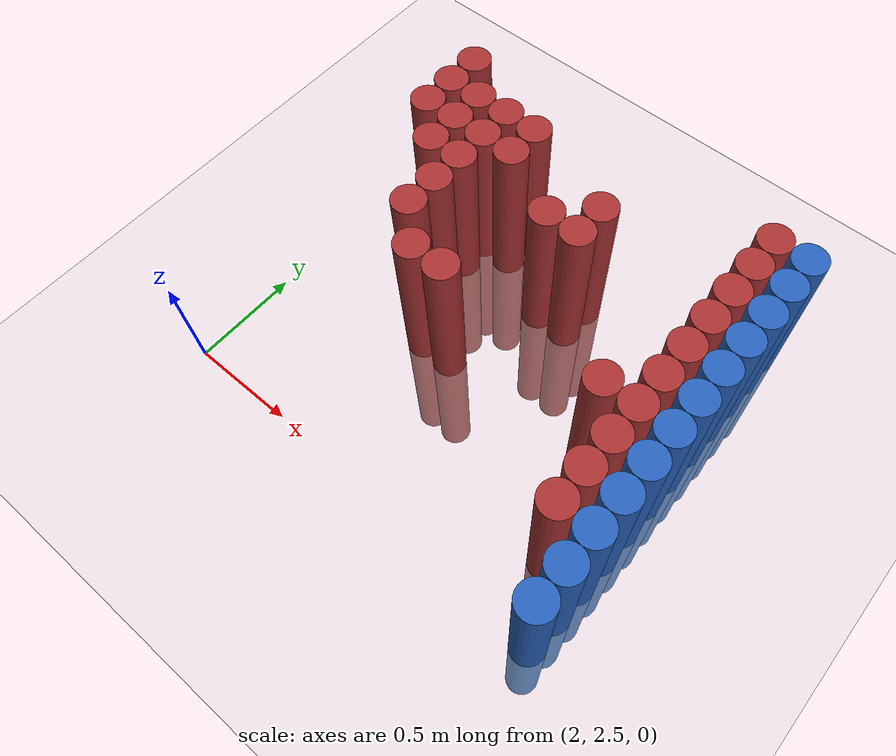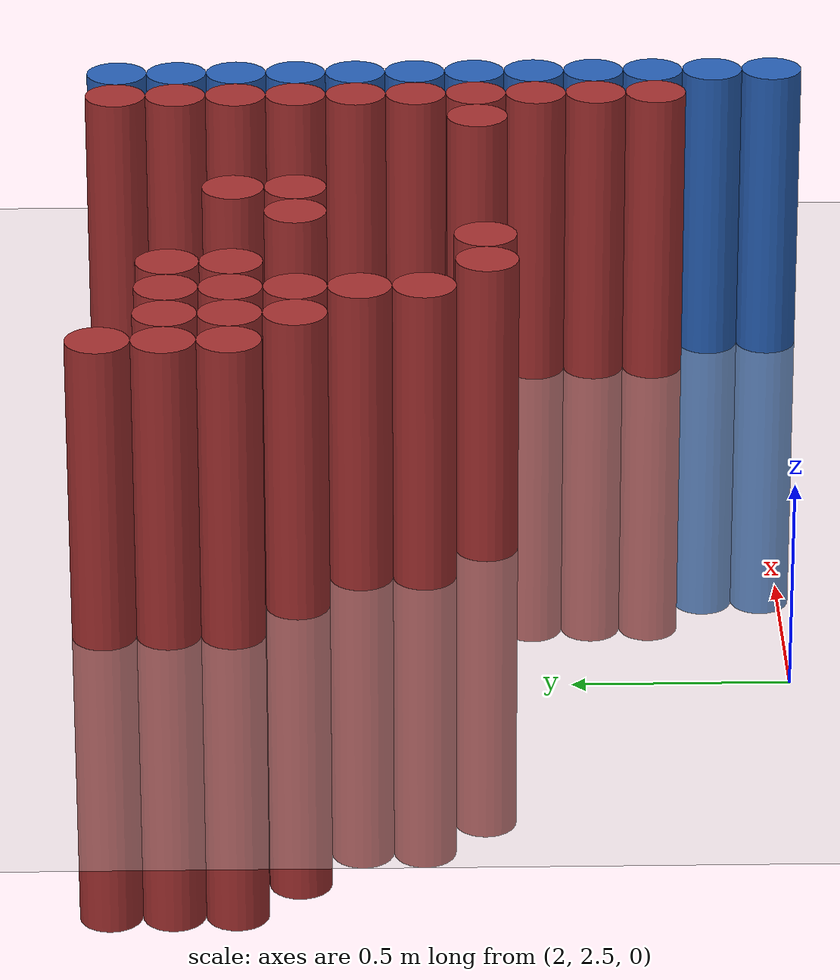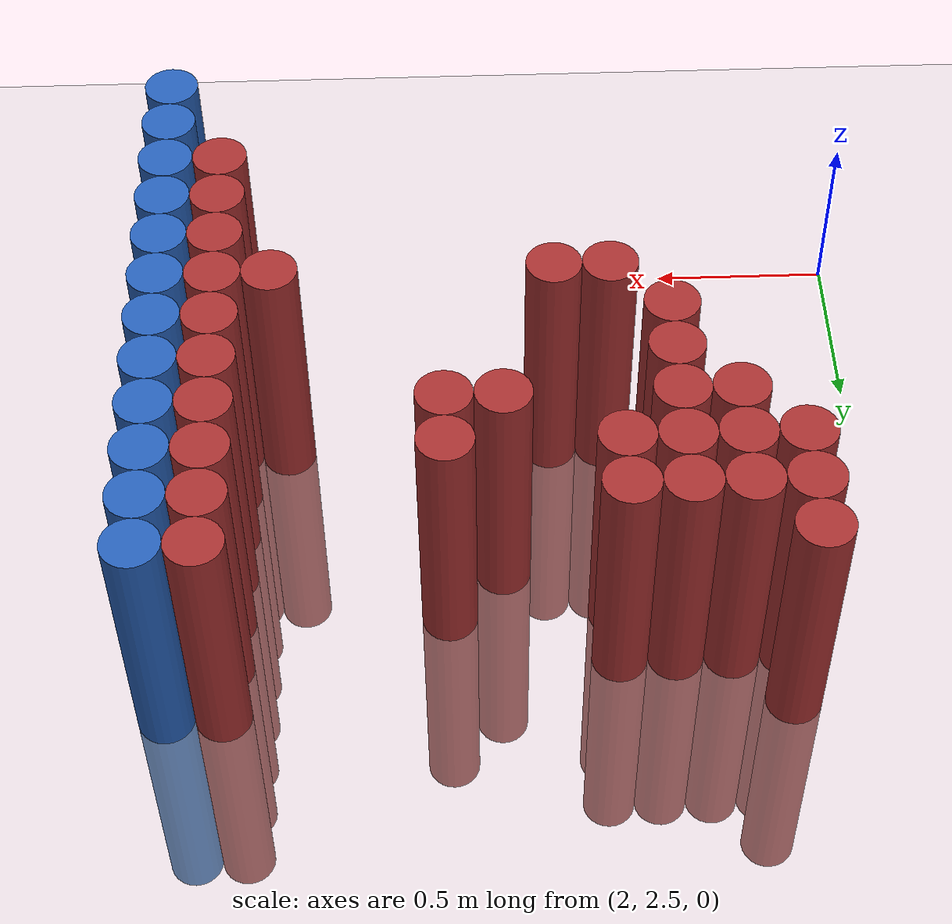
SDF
<sdf version="1.6">
 <world name="default">
  <model name="ground_plane">
   <static>1</static>
   <link name="link">
    <collision name="collision">
     <geometry><plane><normal>0 0 1</normal><size>100 100</size></plane></geometry>
     <surface><friction><ode><mu>100</mu><mu2>50</mu2></ode></friction></surface>
    </collision>
    <visual name="visual">
     <cast_shadows>0</cast_shadows>
     <geometry><plane><normal>0 0 1</normal><size>100 100</size></plane></geometry>
     <material>
      <script><uri>file://media/materials/scripts/gazebo.material</uri><name>Gazebo/Grey</name></script>
     </material>
    </visual>
   </link>
  </model>
  <model name="unit_cylinder_148">
   <static>1</static>
   <pose>3.925000 2.575000 0.000000 0.000000 0.000000 0.000000</pose>
   <link name="link">
    <inertial>
     <mass>1</mass>
     <inertia><ixx>0.145833</ixx><ixy>0</ixy><ixz>0</ixz><iyy>0.145833</iyy><iyz>0</iyz><izz>0.125</izz></inertia>
    </inertial>
    <collision name="collision">
     <geometry><cylinder><radius>0.075000</radius><length>1.5</length></cylinder></geometry>
    </collision>
    <visual name="visual">
     <geometry><cylinder><radius>0.075000</radius><length>1.5</length></cylinder></geometry>
     <material>
      <ambient>0.152000 0.379000 0.720000 1</ambient>
      <diffuse>0.152000 0.379000 0.720000 1</diffuse>
     </material>
     <material>
      <script><name>Gazebo/Grey</name><uri>file://media/materials/scripts/gazebo.material</uri></script>
     </material>
    </visual>
   </link>
  </model>
  <model name="unit_cylinder_150">
   <static>1</static>
   <pose>3.925000 2.725000 0.000000 0.000000 0.000000 0.000000</pose>
   <link name="link">
    <inertial>
     <mass>1</mass>
     <inertia><ixx>0.145833</ixx><ixy>0</ixy><ixz>0</ixz><iyy>0.145833</iyy><iyz>0</iyz><izz>0.125</izz></inertia>
    </inertial>
    <collision name="collision">
     <geometry><cylinder><radius>0.075000</radius><length>1.5</length></cylinder></geometry>
    </collision>
    <visual name="visual">
     <geometry><cylinder><radius>0.075000</radius><length>1.5</length></cylinder></geometry>
     <material>
      <ambient>0.152000 0.379000 0.720000 1</ambient>
      <diffuse>0.152000 0.379000 0.720000 1</diffuse>
     </material>
     <material>
      <script><name>Gazebo/Grey</name><uri>file://media/materials/scripts/gazebo.material</uri></script>
     </material>
    </visual>
   </link>
  </model>
  <model name="unit_cylinder_152">
   <static>1</static>
   <pose>3.925000 2.875000 0.000000 0.000000 0.000000 0.000000</pose>
   <link name="link">
    <inertial>
     <mass>1</mass>
     <inertia><ixx>0.145833</ixx><ixy>0</ixy><ixz>0</ixz><iyy>0.145833</iyy><iyz>0</iyz><izz>0.125</izz></inertia>
    </inertial>
    <collision name="collision">
     <geometry><cylinder><radius>0.075000</radius><length>1.5</length></cylinder></geometry>
    </collision>
    <visual name="visual">
     <geometry><cylinder><radius>0.075000</radius><length>1.5</length></cylinder></geometry>
     <material>
      <ambient>0.152000 0.379000 0.720000 1</ambient>
      <diffuse>0.152000 0.379000 0.720000 1</diffuse>
     </material>
     <material>
      <script><name>Gazebo/Grey</name><uri>file://media/materials/scripts/gazebo.material</uri></script>
     </material>
    </visual>
   </link>
  </model>
  <model name="unit_cylinder_154">
   <static>1</static>
   <pose>3.925000 3.025000 0.000000 0.000000 0.000000 0.000000</pose>
   <link name="link">
    <inertial>
     <mass>1</mass>
     <inertia><ixx>0.145833</ixx><ixy>0</ixy><ixz>0</ixz><iyy>0.145833</iyy><iyz>0</iyz><izz>0.125</izz></inertia>
    </inertial>
    <collision name="collision">
     <geometry><cylinder><radius>0.075000</radius><length>1.5</length></cylinder></geometry>
    </collision>
    <visual name="visual">
     <geometry><cylinder><radius>0.075000</radius><length>1.5</length></cylinder></geometry>
     <material>
      <ambient>0.152000 0.379000 0.720000 1</ambient>
      <diffuse>0.152000 0.379000 0.720000 1</diffuse>
     </material>
     <material>
      <script><name>Gazebo/Grey</name><uri>file://media/materials/scripts/gazebo.material</uri></script>
     </material>
    </visual>
   </link>
  </model>
  <model name="unit_cylinder_156">
   <static>1</static>
   <pose>3.925000 3.175000 0.000000 0.000000 0.000000 0.000000</pose>
   <link name="link">
    <inertial>
     <mass>1</mass>
     <inertia><ixx>0.145833</ixx><ixy>0</ixy><ixz>0</ixz><iyy>0.145833</iyy><iyz>0</iyz><izz>0.125</izz></inertia>
    </inertial>
    <collision name="collision">
     <geometry><cylinder><radius>0.075000</radius><length>1.5</length></cylinder></geometry>
    </collision>
    <visual name="visual">
     <geometry><cylinder><radius>0.075000</radius><length>1.5</length></cylinder></geometry>
     <material>
      <ambient>0.152000 0.379000 0.720000 1</ambient>
      <diffuse>0.152000 0.379000 0.720000 1</diffuse>
     </material>
     <material>
      <script><name>Gazebo/Grey</name><uri>file://media/materials/scripts/gazebo.material</uri></script>
     </material>
    </visual>
   </link>
  </model>
  <model name="unit_cylinder_158">
   <static>1</static>
   <pose>3.925000 3.325000 0.000000 0.000000 0.000000 0.000000</pose>
   <link name="link">
    <inertial>
     <mass>1</mass>
     <inertia><ixx>0.145833</ixx><ixy>0</ixy><ixz>0</ixz><iyy>0.145833</iyy><iyz>0</iyz><izz>0.125</izz></inertia>
    </inertial>
    <collision name="collision">
     <geometry><cylinder><radius>0.075000</radius><length>1.5</length></cylinder></geometry>
    </collision>
    <visual name="visual">
     <geometry><cylinder><radius>0.075000</radius><length>1.5</length></cylinder></geometry>
     <material>
      <ambient>0.152000 0.379000 0.720000 1</ambient>
      <diffuse>0.152000 0.379000 0.720000 1</diffuse>
     </material>
     <material>
      <script><name>Gazebo/Grey</name><uri>file://media/materials/scripts/gazebo.material</uri></script>
     </material>
    </visual>
   </link>
  </model>
  <model name="unit_cylinder_160">
   <static>1</static>
   <pose>3.925000 3.475000 0.000000 0.000000 0.000000 0.000000</pose>
   <link name="link">
    <inertial>
     <mass>1</mass>
     <inertia><ixx>0.145833</ixx><ixy>0</ixy><ixz>0</ixz><iyy>0.145833</iyy><iyz>0</iyz><izz>0.125</izz></inertia>
    </inertial>
    <collision name="collision">
     <geometry><cylinder><radius>0.075000</radius><length>1.5</length></cylinder></geometry>
    </collision>
    <visual name="visual">
     <geometry><cylinder><radius>0.075000</radius><length>1.5</length></cylinder></geometry>
     <material>
      <ambient>0.152000 0.379000 0.720000 1</ambient>
      <diffuse>0.152000 0.379000 0.720000 1</diffuse>
     </material>
     <material>
      <script><name>Gazebo/Grey</name><uri>file://media/materials/scripts/gazebo.material</uri></script>
     </material>
    </visual>
   </link>
  </model>
  <model name="unit_cylinder_162">
   <static>1</static>
   <pose>3.925000 3.625000 0.000000 0.000000 0.000000 0.000000</pose>
   <link name="link">
    <inertial>
     <mass>1</mass>
     <inertia><ixx>0.145833</ixx><ixy>0</ixy><ixz>0</ixz><iyy>0.145833</iyy><iyz>0</iyz><izz>0.125</izz></inertia>
    </inertial>
    <collision name="collision">
     <geometry><cylinder><radius>0.075000</radius><length>1.5</length></cylinder></geometry>
    </collision>
    <visual name="visual">
     <geometry><cylinder><radius>0.075000</radius><length>1.5</length></cylinder></geometry>
     <material>
      <ambient>0.152000 0.379000 0.720000 1</ambient>
      <diffuse>0.152000 0.379000 0.720000 1</diffuse>
     </material>
     <material>
      <script><name>Gazebo/Grey</name><uri>file://media/materials/scripts/gazebo.material</uri></script>
     </material>
    </visual>
   </link>
  </model>
  <model name="unit_cylinder_164">
   <static>1</static>
   <pose>3.925000 3.775000 0.000000 0.000000 0.000000 0.000000</pose>
   <link name="link">
    <inertial>
     <mass>1</mass>
     <inertia><ixx>0.145833</ixx><ixy>0</ixy><ixz>0</ixz><iyy>0.145833</iyy><iyz>0</iyz><izz>0.125</izz></inertia>
    </inertial>
    <collision name="collision">
     <geometry><cylinder><radius>0.075000</radius><length>1.5</length></cylinder></geometry>
    </collision>
    <visual name="visual">
     <geometry><cylinder><radius>0.075000</radius><length>1.5</length></cylinder></geometry>
     <material>
      <ambient>0.152000 0.379000 0.720000 1</ambient>
      <diffuse>0.152000 0.379000 0.720000 1</diffuse>
     </material>
     <material>
      <script><name>Gazebo/Grey</name><uri>file://media/materials/scripts/gazebo.material</uri></script>
     </material>
    </visual>
   </link>
  </model>
  <model name="unit_cylinder_166">
   <static>1</static>
   <pose>3.925000 3.925000 0.000000 0.000000 0.000000 0.000000</pose>
   <link name="link">
    <inertial>
     <mass>1</mass>
     <inertia><ixx>0.145833</ixx><ixy>0</ixy><ixz>0</ixz><iyy>0.145833</iyy><iyz>0</iyz><izz>0.125</izz></inertia>
    </inertial>
    <collision name="collision">
     <geometry><cylinder><radius>0.075000</radius><length>1.5</length></cylinder></geometry>
    </collision>
    <visual name="visual">
     <geometry><cylinder><radius>0.075000</radius><length>1.5</length></cylinder></geometry>
     <material>
      <ambient>0.152000 0.379000 0.720000 1</ambient>
      <diffuse>0.152000 0.379000 0.720000 1</diffuse>
     </material>
     <material>
      <script><name>Gazebo/Grey</name><uri>file://media/materials/scripts/gazebo.material</uri></script>
     </material>
    </visual>
   </link>
  </model>
  <model name="unit_cylinder_168">
   <static>1</static>
   <pose>3.925000 4.075000 0.000000 0.000000 0.000000 0.000000</pose>
   <link name="link">
    <inertial>
     <mass>1</mass>
     <inertia><ixx>0.145833</ixx><ixy>0</ixy><ixz>0</ixz><iyy>0.145833</iyy><iyz>0</iyz><izz>0.125</izz></inertia>
    </inertial>
    <collision name="collision">
     <geometry><cylinder><radius>0.075000</radius><length>1.5</length></cylinder></geometry>
    </collision>
    <visual name="visual">
     <geometry><cylinder><radius>0.075000</radius><length>1.5</length></cylinder></geometry>
     <material>
      <ambient>0.152000 0.379000 0.720000 1</ambient>
      <diffuse>0.152000 0.379000 0.720000 1</diffuse>
     </material>
     <material>
      <script><name>Gazebo/Grey</name><uri>file://media/materials/scripts/gazebo.material</uri></script>
     </material>
    </visual>
   </link>
  </model>
  <model name="unit_cylinder_418">
   <static>1</static>
   <pose>2.275000 3.775000 0.000000 0.000000 0.000000 0.000000</pose>
   <link name="link">
    <inertial>
     <mass>1</mass>
     <inertia><ixx>0.145833</ixx><ixy>0</ixy><ixz>0</ixz><iyy>0.145833</iyy><iyz>0</iyz><izz>0.125</izz></inertia>
    </inertial>
    <collision name="collision">
     <geometry><cylinder><radius>0.075000</radius><length>1.5</length></cylinder></geometry>
    </collision>
    <visual name="visual">
     <geometry><cylinder><radius>0.075000</radius><length>1.5</length></cylinder></geometry>
     <material>
      <ambient>0.648000 0.192000 0.192000 1</ambient>
      <diffuse>0.648000 0.192000 0.192000 1</diffuse>
     </material>
     <material>
      <script><name>Gazebo/Grey</name><uri>file://media/materials/scripts/gazebo.material</uri></script>
     </material>
    </visual>
   </link>
  </model>
  <model name="unit_cylinder_419">
   <static>1</static>
   <pose>2.275000 3.925000 0.000000 0.000000 0.000000 0.000000</pose>
   <link name="link">
    <inertial>
     <mass>1</mass>
     <inertia><ixx>0.145833</ixx><ixy>0</ixy><ixz>0</ixz><iyy>0.145833</iyy><iyz>0</iyz><izz>0.125</izz></inertia>
    </inertial>
    <collision name="collision">
     <geometry><cylinder><radius>0.075000</radius><length>1.5</length></cylinder></geometry>
    </collision>
    <visual name="visual">
     <geometry><cylinder><radius>0.075000</radius><length>1.5</length></cylinder></geometry>
     <material>
      <ambient>0.648000 0.192000 0.192000 1</ambient>
      <diffuse>0.648000 0.192000 0.192000 1</diffuse>
     </material>
     <material>
      <script><name>Gazebo/Grey</name><uri>file://media/materials/scripts/gazebo.material</uri></script>
     </material>
    </visual>
   </link>
  </model>
  <model name="unit_cylinder_420">
   <static>1</static>
   <pose>2.275000 4.075000 0.000000 0.000000 0.000000 0.000000</pose>
   <link name="link">
    <inertial>
     <mass>1</mass>
     <inertia><ixx>0.145833</ixx><ixy>0</ixy><ixz>0</ixz><iyy>0.145833</iyy><iyz>0</iyz><izz>0.125</izz></inertia>
    </inertial>
    <collision name="collision">
     <geometry><cylinder><radius>0.075000</radius><length>1.5</length></cylinder></geometry>
    </collision>
    <visual name="visual">
     <geometry><cylinder><radius>0.075000</radius><length>1.5</length></cylinder></geometry>
     <material>
      <ambient>0.648000 0.192000 0.192000 1</ambient>
      <diffuse>0.648000 0.192000 0.192000 1</diffuse>
     </material>
     <material>
      <script><name>Gazebo/Grey</name><uri>file://media/materials/scripts/gazebo.material</uri></script>
     </material>
    </visual>
   </link>
  </model>
  <model name="unit_cylinder_424">
   <static>1</static>
   <pose>2.425000 3.625000 0.000000 0.000000 0.000000 0.000000</pose>
   <link name="link">
    <inertial>
     <mass>1</mass>
     <inertia><ixx>0.145833</ixx><ixy>0</ixy><ixz>0</ixz><iyy>0.145833</iyy><iyz>0</iyz><izz>0.125</izz></inertia>
    </inertial>
    <collision name="collision">
     <geometry><cylinder><radius>0.075000</radius><length>1.5</length></cylinder></geometry>
    </collision>
    <visual name="visual">
     <geometry><cylinder><radius>0.075000</radius><length>1.5</length></cylinder></geometry>
     <material>
      <ambient>0.648000 0.192000 0.192000 1</ambient>
      <diffuse>0.648000 0.192000 0.192000 1</diffuse>
     </material>
     <material>
      <script><name>Gazebo/Grey</name><uri>file://media/materials/scripts/gazebo.material</uri></script>
     </material>
    </visual>
   </link>
  </model>
  <model name="unit_cylinder_425">
   <static>1</static>
   <pose>2.425000 3.775000 0.000000 0.000000 0.000000 0.000000</pose>
   <link name="link">
    <inertial>
     <mass>1</mass>
     <inertia><ixx>0.145833</ixx><ixy>0</ixy><ixz>0</ixz><iyy>0.145833</iyy><iyz>0</iyz><izz>0.125</izz></inertia>
    </inertial>
    <collision name="collision">
     <geometry><cylinder><radius>0.075000</radius><length>1.5</length></cylinder></geometry>
    </collision>
    <visual name="visual">
     <geometry><cylinder><radius>0.075000</radius><length>1.5</length></cylinder></geometry>
     <material>
      <ambient>0.648000 0.192000 0.192000 1</ambient>
      <diffuse>0.648000 0.192000 0.192000 1</diffuse>
     </material>
     <material>
      <script><name>Gazebo/Grey</name><uri>file://media/materials/scripts/gazebo.material</uri></script>
     </material>
    </visual>
   </link>
  </model>
  <model name="unit_cylinder_426">
   <static>1</static>
   <pose>2.425000 3.925000 0.000000 0.000000 0.000000 0.000000</pose>
   <link name="link">
    <inertial>
     <mass>1</mass>
     <inertia><ixx>0.145833</ixx><ixy>0</ixy><ixz>0</ixz><iyy>0.145833</iyy><iyz>0</iyz><izz>0.125</izz></inertia>
    </inertial>
    <collision name="collision">
     <geometry><cylinder><radius>0.075000</radius><length>1.5</length></cylinder></geometry>
    </collision>
    <visual name="visual">
     <geometry><cylinder><radius>0.075000</radius><length>1.5</length></cylinder></geometry>
     <material>
      <ambient>0.648000 0.192000 0.192000 1</ambient>
      <diffuse>0.648000 0.192000 0.192000 1</diffuse>
     </material>
     <material>
      <script><name>Gazebo/Grey</name><uri>file://media/materials/scripts/gazebo.material</uri></script>
     </material>
    </visual>
   </link>
  </model>
  <model name="unit_cylinder_434">
   <static>1</static>
   <pose>2.575000 3.325000 0.000000 0.000000 0.000000 0.000000</pose>
   <link name="link">
    <inertial>
     <mass>1</mass>
     <inertia><ixx>0.145833</ixx><ixy>0</ixy><ixz>0</ixz><iyy>0.145833</iyy><iyz>0</iyz><izz>0.125</izz></inertia>
    </inertial>
    <collision name="collision">
     <geometry><cylinder><radius>0.075000</radius><length>1.5</length></cylinder></geometry>
    </collision>
    <visual name="visual">
     <geometry><cylinder><radius>0.075000</radius><length>1.5</length></cylinder></geometry>
     <material>
      <ambient>0.648000 0.192000 0.192000 1</ambient>
      <diffuse>0.648000 0.192000 0.192000 1</diffuse>
     </material>
     <material>
      <script><name>Gazebo/Grey</name><uri>file://media/materials/scripts/gazebo.material</uri></script>
     </material>
    </visual>
   </link>
  </model>
  <model name="unit_cylinder_435">
   <static>1</static>
   <pose>2.575000 3.475000 0.000000 0.000000 0.000000 0.000000</pose>
   <link name="link">
    <inertial>
     <mass>1</mass>
     <inertia><ixx>0.145833</ixx><ixy>0</ixy><ixz>0</ixz><iyy>0.145833</iyy><iyz>0</iyz><izz>0.125</izz></inertia>
    </inertial>
    <collision name="collision">
     <geometry><cylinder><radius>0.075000</radius><length>1.5</length></cylinder></geometry>
    </collision>
    <visual name="visual">
     <geometry><cylinder><radius>0.075000</radius><length>1.5</length></cylinder></geometry>
     <material>
      <ambient>0.648000 0.192000 0.192000 1</ambient>
      <diffuse>0.648000 0.192000 0.192000 1</diffuse>
     </material>
     <material>
      <script><name>Gazebo/Grey</name><uri>file://media/materials/scripts/gazebo.material</uri></script>
     </material>
    </visual>
   </link>
  </model>
  <model name="unit_cylinder_436">
   <static>1</static>
   <pose>2.575000 3.625000 0.000000 0.000000 0.000000 0.000000</pose>
   <link name="link">
    <inertial>
     <mass>1</mass>
     <inertia><ixx>0.145833</ixx><ixy>0</ixy><ixz>0</ixz><iyy>0.145833</iyy><iyz>0</iyz><izz>0.125</izz></inertia>
    </inertial>
    <collision name="collision">
     <geometry><cylinder><radius>0.075000</radius><length>1.5</length></cylinder></geometry>
    </collision>
    <visual name="visual">
     <geometry><cylinder><radius>0.075000</radius><length>1.5</length></cylinder></geometry>
     <material>
      <ambient>0.648000 0.192000 0.192000 1</ambient>
      <diffuse>0.648000 0.192000 0.192000 1</diffuse>
     </material>
     <material>
      <script><name>Gazebo/Grey</name><uri>file://media/materials/scripts/gazebo.material</uri></script>
     </material>
    </visual>
   </link>
  </model>
  <model name="unit_cylinder_437">
   <static>1</static>
   <pose>2.575000 3.775000 0.000000 0.000000 0.000000 0.000000</pose>
   <link name="link">
    <inertial>
     <mass>1</mass>
     <inertia><ixx>0.145833</ixx><ixy>0</ixy><ixz>0</ixz><iyy>0.145833</iyy><iyz>0</iyz><izz>0.125</izz></inertia>
    </inertial>
    <collision name="collision">
     <geometry><cylinder><radius>0.075000</radius><length>1.5</length></cylinder></geometry>
    </collision>
    <visual name="visual">
     <geometry><cylinder><radius>0.075000</radius><length>1.5</length></cylinder></geometry>
     <material>
      <ambient>0.648000 0.192000 0.192000 1</ambient>
      <diffuse>0.648000 0.192000 0.192000 1</diffuse>
     </material>
     <material>
      <script><name>Gazebo/Grey</name><uri>file://media/materials/scripts/gazebo.material</uri></script>
     </material>
    </visual>
   </link>
  </model>
  <model name="unit_cylinder_438">
   <static>1</static>
   <pose>2.575000 3.925000 0.000000 0.000000 0.000000 0.000000</pose>
   <link name="link">
    <inertial>
     <mass>1</mass>
     <inertia><ixx>0.145833</ixx><ixy>0</ixy><ixz>0</ixz><iyy>0.145833</iyy><iyz>0</iyz><izz>0.125</izz></inertia>
    </inertial>
    <collision name="collision">
     <geometry><cylinder><radius>0.075000</radius><length>1.5</length></cylinder></geometry>
    </collision>
    <visual name="visual">
     <geometry><cylinder><radius>0.075000</radius><length>1.5</length></cylinder></geometry>
     <material>
      <ambient>0.648000 0.192000 0.192000 1</ambient>
      <diffuse>0.648000 0.192000 0.192000 1</diffuse>
     </material>
     <material>
      <script><name>Gazebo/Grey</name><uri>file://media/materials/scripts/gazebo.material</uri></script>
     </material>
    </visual>
   </link>
  </model>
  <model name="unit_cylinder_446">
   <static>1</static>
   <pose>2.725000 3.175000 0.000000 0.000000 0.000000 0.000000</pose>
   <link name="link">
    <inertial>
     <mass>1</mass>
     <inertia><ixx>0.145833</ixx><ixy>0</ixy><ixz>0</ixz><iyy>0.145833</iyy><iyz>0</iyz><izz>0.125</izz></inertia>
    </inertial>
    <collision name="collision">
     <geometry><cylinder><radius>0.075000</radius><length>1.5</length></cylinder></geometry>
    </collision>
    <visual name="visual">
     <geometry><cylinder><radius>0.075000</radius><length>1.5</length></cylinder></geometry>
     <material>
      <ambient>0.648000 0.192000 0.192000 1</ambient>
      <diffuse>0.648000 0.192000 0.192000 1</diffuse>
     </material>
     <material>
      <script><name>Gazebo/Grey</name><uri>file://media/materials/scripts/gazebo.material</uri></script>
     </material>
    </visual>
   </link>
  </model>
  <model name="unit_cylinder_447">
   <static>1</static>
   <pose>2.725000 3.775000 0.000000 0.000000 0.000000 0.000000</pose>
   <link name="link">
    <inertial>
     <mass>1</mass>
     <inertia><ixx>0.145833</ixx><ixy>0</ixy><ixz>0</ixz><iyy>0.145833</iyy><iyz>0</iyz><izz>0.125</izz></inertia>
    </inertial>
    <collision name="collision">
     <geometry><cylinder><radius>0.075000</radius><length>1.5</length></cylinder></geometry>
    </collision>
    <visual name="visual">
     <geometry><cylinder><radius>0.075000</radius><length>1.5</length></cylinder></geometry>
     <material>
      <ambient>0.648000 0.192000 0.192000 1</ambient>
      <diffuse>0.648000 0.192000 0.192000 1</diffuse>
     </material>
     <material>
      <script><name>Gazebo/Grey</name><uri>file://media/materials/scripts/gazebo.material</uri></script>
     </material>
    </visual>
   </link>
  </model>
  <model name="unit_cylinder_448">
   <static>1</static>
   <pose>2.725000 3.925000 0.000000 0.000000 0.000000 0.000000</pose>
   <link name="link">
    <inertial>
     <mass>1</mass>
     <inertia><ixx>0.145833</ixx><ixy>0</ixy><ixz>0</ixz><iyy>0.145833</iyy><iyz>0</iyz><izz>0.125</izz></inertia>
    </inertial>
    <collision name="collision">
     <geometry><cylinder><radius>0.075000</radius><length>1.5</length></cylinder></geometry>
    </collision>
    <visual name="visual">
     <geometry><cylinder><radius>0.075000</radius><length>1.5</length></cylinder></geometry>
     <material>
      <ambient>0.648000 0.192000 0.192000 1</ambient>
      <diffuse>0.648000 0.192000 0.192000 1</diffuse>
     </material>
     <material>
      <script><name>Gazebo/Grey</name><uri>file://media/materials/scripts/gazebo.material</uri></script>
     </material>
    </visual>
   </link>
  </model>
  <model name="unit_cylinder_455">
   <static>1</static>
   <pose>2.875000 3.175000 0.000000 0.000000 0.000000 0.000000</pose>
   <link name="link">
    <inertial>
     <mass>1</mass>
     <inertia><ixx>0.145833</ixx><ixy>0</ixy><ixz>0</ixz><iyy>0.145833</iyy><iyz>0</iyz><izz>0.125</izz></inertia>
    </inertial>
    <collision name="collision">
     <geometry><cylinder><radius>0.075000</radius><length>1.5</length></cylinder></geometry>
    </collision>
    <visual name="visual">
     <geometry><cylinder><radius>0.075000</radius><length>1.5</length></cylinder></geometry>
     <material>
      <ambient>0.648000 0.192000 0.192000 1</ambient>
      <diffuse>0.648000 0.192000 0.192000 1</diffuse>
     </material>
     <material>
      <script><name>Gazebo/Grey</name><uri>file://media/materials/scripts/gazebo.material</uri></script>
     </material>
    </visual>
   </link>
  </model>
  <model name="unit_cylinder_458">
   <static>1</static>
   <pose>3.025000 3.625000 0.000000 0.000000 0.000000 0.000000</pose>
   <link name="link">
    <inertial>
     <mass>1</mass>
     <inertia><ixx>0.145833</ixx><ixy>0</ixy><ixz>0</ixz><iyy>0.145833</iyy><iyz>0</iyz><izz>0.125</izz></inertia>
    </inertial>
    <collision name="collision">
     <geometry><cylinder><radius>0.075000</radius><length>1.5</length></cylinder></geometry>
    </collision>
    <visual name="visual">
     <geometry><cylinder><radius>0.075000</radius><length>1.5</length></cylinder></geometry>
     <material>
      <ambient>0.648000 0.192000 0.192000 1</ambient>
      <diffuse>0.648000 0.192000 0.192000 1</diffuse>
     </material>
     <material>
      <script><name>Gazebo/Grey</name><uri>file://media/materials/scripts/gazebo.material</uri></script>
     </material>
    </visual>
   </link>
  </model>
  <model name="unit_cylinder_463">
   <static>1</static>
   <pose>3.175000 3.625000 0.000000 0.000000 0.000000 0.000000</pose>
   <link name="link">
    <inertial>
     <mass>1</mass>
     <inertia><ixx>0.145833</ixx><ixy>0</ixy><ixz>0</ixz><iyy>0.145833</iyy><iyz>0</iyz><izz>0.125</izz></inertia>
    </inertial>
    <collision name="collision">
     <geometry><cylinder><radius>0.075000</radius><length>1.5</length></cylinder></geometry>
    </collision>
    <visual name="visual">
     <geometry><cylinder><radius>0.075000</radius><length>1.5</length></cylinder></geometry>
     <material>
      <ambient>0.648000 0.192000 0.192000 1</ambient>
      <diffuse>0.648000 0.192000 0.192000 1</diffuse>
     </material>
     <material>
      <script><name>Gazebo/Grey</name><uri>file://media/materials/scripts/gazebo.material</uri></script>
     </material>
    </visual>
   </link>
  </model>
  <model name="unit_cylinder_464">
   <static>1</static>
   <pose>3.175000 3.775000 0.000000 0.000000 0.000000 0.000000</pose>
   <link name="link">
    <inertial>
     <mass>1</mass>
     <inertia><ixx>0.145833</ixx><ixy>0</ixy><ixz>0</ixz><iyy>0.145833</iyy><iyz>0</iyz><izz>0.125</izz></inertia>
    </inertial>
    <collision name="collision">
     <geometry><cylinder><radius>0.075000</radius><length>1.5</length></cylinder></geometry>
    </collision>
    <visual name="visual">
     <geometry><cylinder><radius>0.075000</radius><length>1.5</length></cylinder></geometry>
     <material>
      <ambient>0.648000 0.192000 0.192000 1</ambient>
      <diffuse>0.648000 0.192000 0.192000 1</diffuse>
     </material>
     <material>
      <script><name>Gazebo/Grey</name><uri>file://media/materials/scripts/gazebo.material</uri></script>
     </material>
    </visual>
   </link>
  </model>
  <model name="unit_cylinder_491">
   <static>1</static>
   <pose>3.625000 3.175000 0.000000 0.000000 0.000000 0.000000</pose>
   <link name="link">
    <inertial>
     <mass>1</mass>
     <inertia><ixx>0.145833</ixx><ixy>0</ixy><ixz>0</ixz><iyy>0.145833</iyy><iyz>0</iyz><izz>0.125</izz></inertia>
    </inertial>
    <collision name="collision">
     <geometry><cylinder><radius>0.075000</radius><length>1.5</length></cylinder></geometry>
    </collision>
    <visual name="visual">
     <geometry><cylinder><radius>0.075000</radius><length>1.5</length></cylinder></geometry>
     <material>
      <ambient>0.648000 0.192000 0.192000 1</ambient>
      <diffuse>0.648000 0.192000 0.192000 1</diffuse>
     </material>
     <material>
      <script><name>Gazebo/Grey</name><uri>file://media/materials/scripts/gazebo.material</uri></script>
     </material>
    </visual>
   </link>
  </model>
  <model name="unit_cylinder_505">
   <static>1</static>
   <pose>3.775000 2.725000 0.000000 0.000000 0.000000 0.000000</pose>
   <link name="link">
    <inertial>
     <mass>1</mass>
     <inertia><ixx>0.145833</ixx><ixy>0</ixy><ixz>0</ixz><iyy>0.145833</iyy><iyz>0</iyz><izz>0.125</izz></inertia>
    </inertial>
    <collision name="collision">
     <geometry><cylinder><radius>0.075000</radius><length>1.5</length></cylinder></geometry>
    </collision>
    <visual name="visual">
     <geometry><cylinder><radius>0.075000</radius><length>1.5</length></cylinder></geometry>
     <material>
      <ambient>0.648000 0.192000 0.192000 1</ambient>
      <diffuse>0.648000 0.192000 0.192000 1</diffuse>
     </material>
     <material>
      <script><name>Gazebo/Grey</name><uri>file://media/materials/scripts/gazebo.material</uri></script>
     </material>
    </visual>
   </link>
  </model>
  <model name="unit_cylinder_506">
   <static>1</static>
   <pose>3.775000 2.875000 0.000000 0.000000 0.000000 0.000000</pose>
   <link name="link">
    <inertial>
     <mass>1</mass>
     <inertia><ixx>0.145833</ixx><ixy>0</ixy><ixz>0</ixz><iyy>0.145833</iyy><iyz>0</iyz><izz>0.125</izz></inertia>
    </inertial>
    <collision name="collision">
     <geometry><cylinder><radius>0.075000</radius><length>1.5</length></cylinder></geometry>
    </collision>
    <visual name="visual">
     <geometry><cylinder><radius>0.075000</radius><length>1.5</length></cylinder></geometry>
     <material>
      <ambient>0.648000 0.192000 0.192000 1</ambient>
      <diffuse>0.648000 0.192000 0.192000 1</diffuse>
     </material>
     <material>
      <script><name>Gazebo/Grey</name><uri>file://media/materials/scripts/gazebo.material</uri></script>
     </material>
    </visual>
   </link>
  </model>
  <model name="unit_cylinder_507">
   <static>1</static>
   <pose>3.775000 3.025000 0.000000 0.000000 0.000000 0.000000</pose>
   <link name="link">
    <inertial>
     <mass>1</mass>
     <inertia><ixx>0.145833</ixx><ixy>0</ixy><ixz>0</ixz><iyy>0.145833</iyy><iyz>0</iyz><izz>0.125</izz></inertia>
    </inertial>
    <collision name="collision">
     <geometry><cylinder><radius>0.075000</radius><length>1.5</length></cylinder></geometry>
    </collision>
    <visual name="visual">
     <geometry><cylinder><radius>0.075000</radius><length>1.5</length></cylinder></geometry>
     <material>
      <ambient>0.648000 0.192000 0.192000 1</ambient>
      <diffuse>0.648000 0.192000 0.192000 1</diffuse>
     </material>
     <material>
      <script><name>Gazebo/Grey</name><uri>file://media/materials/scripts/gazebo.material</uri></script>
     </material>
    </visual>
   </link>
  </model>
  <model name="unit_cylinder_508">
   <static>1</static>
   <pose>3.775000 3.175000 0.000000 0.000000 0.000000 0.000000</pose>
   <link name="link">
    <inertial>
     <mass>1</mass>
     <inertia><ixx>0.145833</ixx><ixy>0</ixy><ixz>0</ixz><iyy>0.145833</iyy><iyz>0</iyz><izz>0.125</izz></inertia>
    </inertial>
    <collision name="collision">
     <geometry><cylinder><radius>0.075000</radius><length>1.5</length></cylinder></geometry>
    </collision>
    <visual name="visual">
     <geometry><cylinder><radius>0.075000</radius><length>1.5</length></cylinder></geometry>
     <material>
      <ambient>0.648000 0.192000 0.192000 1</ambient>
      <diffuse>0.648000 0.192000 0.192000 1</diffuse>
     </material>
     <material>
      <script><name>Gazebo/Grey</name><uri>file://media/materials/scripts/gazebo.material</uri></script>
     </material>
    </visual>
   </link>
  </model>
  <model name="unit_cylinder_509">
   <static>1</static>
   <pose>3.775000 3.325000 0.000000 0.000000 0.000000 0.000000</pose>
   <link name="link">
    <inertial>
     <mass>1</mass>
     <inertia><ixx>0.145833</ixx><ixy>0</ixy><ixz>0</ixz><iyy>0.145833</iyy><iyz>0</iyz><izz>0.125</izz></inertia>
    </inertial>
    <collision name="collision">
     <geometry><cylinder><radius>0.075000</radius><length>1.5</length></cylinder></geometry>
    </collision>
    <visual name="visual">
     <geometry><cylinder><radius>0.075000</radius><length>1.5</length></cylinder></geometry>
     <material>
      <ambient>0.648000 0.192000 0.192000 1</ambient>
      <diffuse>0.648000 0.192000 0.192000 1</diffuse>
     </material>
     <material>
      <script><name>Gazebo/Grey</name><uri>file://media/materials/scripts/gazebo.material</uri></script>
     </material>
    </visual>
   </link>
  </model>
  <model name="unit_cylinder_510">
   <static>1</static>
   <pose>3.775000 3.475000 0.000000 0.000000 0.000000 0.000000</pose>
   <link name="link">
    <inertial>
     <mass>1</mass>
     <inertia><ixx>0.145833</ixx><ixy>0</ixy><ixz>0</ixz><iyy>0.145833</iyy><iyz>0</iyz><izz>0.125</izz></inertia>
    </inertial>
    <collision name="collision">
     <geometry><cylinder><radius>0.075000</radius><length>1.5</length></cylinder></geometry>
    </collision>
    <visual name="visual">
     <geometry><cylinder><radius>0.075000</radius><length>1.5</length></cylinder></geometry>
     <material>
      <ambient>0.648000 0.192000 0.192000 1</ambient>
      <diffuse>0.648000 0.192000 0.192000 1</diffuse>
     </material>
     <material>
      <script><name>Gazebo/Grey</name><uri>file://media/materials/scripts/gazebo.material</uri></script>
     </material>
    </visual>
   </link>
  </model>
  <model name="unit_cylinder_511">
   <static>1</static>
   <pose>3.775000 3.625000 0.000000 0.000000 0.000000 0.000000</pose>
   <link name="link">
    <inertial>
     <mass>1</mass>
     <inertia><ixx>0.145833</ixx><ixy>0</ixy><ixz>0</ixz><iyy>0.145833</iyy><iyz>0</iyz><izz>0.125</izz></inertia>
    </inertial>
    <collision name="collision">
     <geometry><cylinder><radius>0.075000</radius><length>1.5</length></cylinder></geometry>
    </collision>
    <visual name="visual">
     <geometry><cylinder><radius>0.075000</radius><length>1.5</length></cylinder></geometry>
     <material>
      <ambient>0.648000 0.192000 0.192000 1</ambient>
      <diffuse>0.648000 0.192000 0.192000 1</diffuse>
     </material>
     <material>
      <script><name>Gazebo/Grey</name><uri>file://media/materials/scripts/gazebo.material</uri></script>
     </material>
    </visual>
   </link>
  </model>
  <model name="unit_cylinder_512">
   <static>1</static>
   <pose>3.775000 3.775000 0.000000 0.000000 0.000000 0.000000</pose>
   <link name="link">
    <inertial>
     <mass>1</mass>
     <inertia><ixx>0.145833</ixx><ixy>0</ixy><ixz>0</ixz><iyy>0.145833</iyy><iyz>0</iyz><izz>0.125</izz></inertia>
    </inertial>
    <collision name="collision">
     <geometry><cylinder><radius>0.075000</radius><length>1.5</length></cylinder></geometry>
    </collision>
    <visual name="visual">
     <geometry><cylinder><radius>0.075000</radius><length>1.5</length></cylinder></geometry>
     <material>
      <ambient>0.648000 0.192000 0.192000 1</ambient>
      <diffuse>0.648000 0.192000 0.192000 1</diffuse>
     </material>
     <material>
      <script><name>Gazebo/Grey</name><uri>file://media/materials/scripts/gazebo.material</uri></script>
     </material>
    </visual>
   </link>
  </model>
  <model name="unit_cylinder_513">
   <static>1</static>
   <pose>3.775000 3.925000 0.000000 0.000000 0.000000 0.000000</pose>
   <link name="link">
    <inertial>
     <mass>1</mass>
     <inertia><ixx>0.145833</ixx><ixy>0</ixy><ixz>0</ixz><iyy>0.145833</iyy><iyz>0</iyz><izz>0.125</izz></inertia>
    </inertial>
    <collision name="collision">
     <geometry><cylinder><radius>0.075000</radius><length>1.5</length></cylinder></geometry>
    </collision>
    <visual name="visual">
     <geometry><cylinder><radius>0.075000</radius><length>1.5</length></cylinder></geometry>
     <material>
      <ambient>0.648000 0.192000 0.192000 1</ambient>
      <diffuse>0.648000 0.192000 0.192000 1</diffuse>
     </material>
     <material>
      <script><name>Gazebo/Grey</name><uri>file://media/materials/scripts/gazebo.material</uri></script>
     </material>
    </visual>
   </link>
  </model>
  <model name="unit_cylinder_514">
   <static>1</static>
   <pose>3.775000 4.075000 0.000000 0.000000 0.000000 0.000000</pose>
   <link name="link">
    <inertial>
     <mass>1</mass>
     <inertia><ixx>0.145833</ixx><ixy>0</ixy><ixz>0</ixz><iyy>0.145833</iyy><iyz>0</iyz><izz>0.125</izz></inertia>
    </inertial>
    <collision name="collision">
     <geometry><cylinder><radius>0.075000</radius><length>1.5</length></cylinder></geometry>
    </collision>
    <visual name="visual">
     <geometry><cylinder><radius>0.075000</radius><length>1.5</length></cylinder></geometry>
     <material>
      <ambient>0.648000 0.192000 0.192000 1</ambient>
      <diffuse>0.648000 0.192000 0.192000 1</diffuse>
     </material>
     <material>
      <script><name>Gazebo/Grey</name><uri>file://media/materials/scripts/gazebo.material</uri></script>
     </material>
    </visual>
   </link>
  </model>
  <model name="unit_cylinder_546">
   <static>1</static>
   <pose>3.925000 2.425000 0.000000 0.000000 0.000000 0.000000</pose>
   <link name="link">
    <inertial>
     <mass>1</mass>
     <inertia><ixx>0.145833</ixx><ixy>0</ixy><ixz>0</ixz><iyy>0.145833</iyy><iyz>0</iyz><izz>0.125</izz></inertia>
    </inertial>
    <collision name="collision">
     <geometry><cylinder><radius>0.075000</radius><length>1.5</length></cylinder></geometry>
    </collision>
    <visual name="visual">
     <geometry><cylinder><radius>0.075000</radius><length>1.5</length></cylinder></geometry>
     <material>
      <ambient>0.152000 0.379000 0.720000 1</ambient>
      <diffuse>0.152000 0.379000 0.720000 1</diffuse>
     </material>
     <material>
      <script><name>Gazebo/Grey</name><uri>file://media/materials/scripts/gazebo.material</uri></script>
     </material>
    </visual>
   </link>
  </model>
  <model name="unit_cylinder_547">
   <static>1</static>
   <pose>3.925000 2.575000 0.000000 0.000000 0.000000 0.000000</pose>
   <link name="link">
    <inertial>
     <mass>1</mass>
     <inertia><ixx>0.145833</ixx><ixy>0</ixy><ixz>0</ixz><iyy>0.145833</iyy><iyz>0</iyz><izz>0.125</izz></inertia>
    </inertial>
    <collision name="collision">
     <geometry><cylinder><radius>0.075000</radius><length>1.5</length></cylinder></geometry>
    </collision>
    <visual name="visual">
     <geometry><cylinder><radius>0.075000</radius><length>1.5</length></cylinder></geometry>
     <material>
      <ambient>0.152000 0.379000 0.720000 1</ambient>
      <diffuse>0.152000 0.379000 0.720000 1</diffuse>
     </material>
     <material>
      <script><name>Gazebo/Grey</name><uri>file://media/materials/scripts/gazebo.material</uri></script>
     </material>
    </visual>
   </link>
  </model>
  <model name="unit_cylinder_548">
   <static>1</static>
   <pose>3.925000 2.725000 0.000000 0.000000 0.000000 0.000000</pose>
   <link name="link">
    <inertial>
     <mass>1</mass>
     <inertia><ixx>0.145833</ixx><ixy>0</ixy><ixz>0</ixz><iyy>0.145833</iyy><iyz>0</iyz><izz>0.125</izz></inertia>
    </inertial>
    <collision name="collision">
     <geometry><cylinder><radius>0.075000</radius><length>1.5</length></cylinder></geometry>
    </collision>
    <visual name="visual">
     <geometry><cylinder><radius>0.075000</radius><length>1.5</length></cylinder></geometry>
     <material>
      <ambient>0.152000 0.379000 0.720000 1</ambient>
      <diffuse>0.152000 0.379000 0.720000 1</diffuse>
     </material>
     <material>
      <script><name>Gazebo/Grey</name><uri>file://media/materials/scripts/gazebo.material</uri></script>
     </material>
    </visual>
   </link>
  </model>
  <model name="unit_cylinder_549">
   <static>1</static>
   <pose>3.925000 2.875000 0.000000 0.000000 0.000000 0.000000</pose>
   <link name="link">
    <inertial>
     <mass>1</mass>
     <inertia><ixx>0.145833</ixx><ixy>0</ixy><ixz>0</ixz><iyy>0.145833</iyy><iyz>0</iyz><izz>0.125</izz></inertia>
    </inertial>
    <collision name="collision">
     <geometry><cylinder><radius>0.075000</radius><length>1.5</length></cylinder></geometry>
    </collision>
    <visual name="visual">
     <geometry><cylinder><radius>0.075000</radius><length>1.5</length></cylinder></geometry>
     <material>
      <ambient>0.152000 0.379000 0.720000 1</ambient>
      <diffuse>0.152000 0.379000 0.720000 1</diffuse>
     </material>
     <material>
      <script><name>Gazebo/Grey</name><uri>file://media/materials/scripts/gazebo.material</uri></script>
     </material>
    </visual>
   </link>
  </model>
  <model name="unit_cylinder_550">
   <static>1</static>
   <pose>3.925000 3.025000 0.000000 0.000000 0.000000 0.000000</pose>
   <link name="link">
    <inertial>
     <mass>1</mass>
     <inertia><ixx>0.145833</ixx><ixy>0</ixy><ixz>0</ixz><iyy>0.145833</iyy><iyz>0</iyz><izz>0.125</izz></inertia>
    </inertial>
    <collision name="collision">
     <geometry><cylinder><radius>0.075000</radius><length>1.5</length></cylinder></geometry>
    </collision>
    <visual name="visual">
     <geometry><cylinder><radius>0.075000</radius><length>1.5</length></cylinder></geometry>
     <material>
      <ambient>0.152000 0.379000 0.720000 1</ambient>
      <diffuse>0.152000 0.379000 0.720000 1</diffuse>
     </material>
     <material>
      <script><name>Gazebo/Grey</name><uri>file://media/materials/scripts/gazebo.material</uri></script>
     </material>
    </visual>
   </link>
  </model>
  <model name="unit_cylinder_551">
   <static>1</static>
   <pose>3.925000 3.175000 0.000000 0.000000 0.000000 0.000000</pose>
   <link name="link">
    <inertial>
     <mass>1</mass>
     <inertia><ixx>0.145833</ixx><ixy>0</ixy><ixz>0</ixz><iyy>0.145833</iyy><iyz>0</iyz><izz>0.125</izz></inertia>
    </inertial>
    <collision name="collision">
     <geometry><cylinder><radius>0.075000</radius><length>1.5</length></cylinder></geometry>
    </collision>
    <visual name="visual">
     <geometry><cylinder><radius>0.075000</radius><length>1.5</length></cylinder></geometry>
     <material>
      <ambient>0.152000 0.379000 0.720000 1</ambient>
      <diffuse>0.152000 0.379000 0.720000 1</diffuse>
     </material>
     <material>
      <script><name>Gazebo/Grey</name><uri>file://media/materials/scripts/gazebo.material</uri></script>
     </material>
    </visual>
   </link>
  </model>
  <model name="unit_cylinder_552">
   <static>1</static>
   <pose>3.925000 3.325000 0.000000 0.000000 0.000000 0.000000</pose>
   <link name="link">
    <inertial>
     <mass>1</mass>
     <inertia><ixx>0.145833</ixx><ixy>0</ixy><ixz>0</ixz><iyy>0.145833</iyy><iyz>0</iyz><izz>0.125</izz></inertia>
    </inertial>
    <collision name="collision">
     <geometry><cylinder><radius>0.075000</radius><length>1.5</length></cylinder></geometry>
    </collision>
    <visual name="visual">
     <geometry><cylinder><radius>0.075000</radius><length>1.5</length></cylinder></geometry>
     <material>
      <ambient>0.152000 0.379000 0.720000 1</ambient>
      <diffuse>0.152000 0.379000 0.720000 1</diffuse>
     </material>
     <material>
      <script><name>Gazebo/Grey</name><uri>file://media/materials/scripts/gazebo.material</uri></script>
     </material>
    </visual>
   </link>
  </model>
  <model name="unit_cylinder_553">
   <static>1</static>
   <pose>3.925000 3.475000 0.000000 0.000000 0.000000 0.000000</pose>
   <link name="link">
    <inertial>
     <mass>1</mass>
     <inertia><ixx>0.145833</ixx><ixy>0</ixy><ixz>0</ixz><iyy>0.145833</iyy><iyz>0</iyz><izz>0.125</izz></inertia>
    </inertial>
    <collision name="collision">
     <geometry><cylinder><radius>0.075000</radius><length>1.5</length></cylinder></geometry>
    </collision>
    <visual name="visual">
     <geometry><cylinder><radius>0.075000</radius><length>1.5</length></cylinder></geometry>
     <material>
      <ambient>0.152000 0.379000 0.720000 1</ambient>
      <diffuse>0.152000 0.379000 0.720000 1</diffuse>
     </material>
     <material>
      <script><name>Gazebo/Grey</name><uri>file://media/materials/scripts/gazebo.material</uri></script>
     </material>
    </visual>
   </link>
  </model>
  <model name="unit_cylinder_554">
   <static>1</static>
   <pose>3.925000 3.625000 0.000000 0.000000 0.000000 0.000000</pose>
   <link name="link">
    <inertial>
     <mass>1</mass>
     <inertia><ixx>0.145833</ixx><ixy>0</ixy><ixz>0</ixz><iyy>0.145833</iyy><iyz>0</iyz><izz>0.125</izz></inertia>
    </inertial>
    <collision name="collision">
     <geometry><cylinder><radius>0.075000</radius><length>1.5</length></cylinder></geometry>
    </collision>
    <visual name="visual">
     <geometry><cylinder><radius>0.075000</radius><length>1.5</length></cylinder></geometry>
     <material>
      <ambient>0.152000 0.379000 0.720000 1</ambient>
      <diffuse>0.152000 0.379000 0.720000 1</diffuse>
     </material>
     <material>
      <script><name>Gazebo/Grey</name><uri>file://media/materials/scripts/gazebo.material</uri></script>
     </material>
    </visual>
   </link>
  </model>
  <model name="unit_cylinder_555">
   <static>1</static>
   <pose>3.925000 3.775000 0.000000 0.000000 0.000000 0.000000</pose>
   <link name="link">
    <inertial>
     <mass>1</mass>
     <inertia><ixx>0.145833</ixx><ixy>0</ixy><ixz>0</ixz><iyy>0.145833</iyy><iyz>0</iyz><izz>0.125</izz></inertia>
    </inertial>
    <collision name="collision">
     <geometry><cylinder><radius>0.075000</radius><length>1.5</length></cylinder></geometry>
    </collision>
    <visual name="visual">
     <geometry><cylinder><radius>0.075000</radius><length>1.5</length></cylinder></geometry>
     <material>
      <ambient>0.152000 0.379000 0.720000 1</ambient>
      <diffuse>0.152000 0.379000 0.720000 1</diffuse>
     </material>
     <material>
      <script><name>Gazebo/Grey</name><uri>file://media/materials/scripts/gazebo.material</uri></script>
     </material>
    </visual>
   </link>
  </model>
  <model name="unit_cylinder_556">
   <static>1</static>
   <pose>3.925000 3.925000 0.000000 0.000000 0.000000 0.000000</pose>
   <link name="link">
    <inertial>
     <mass>1</mass>
     <inertia><ixx>0.145833</ixx><ixy>0</ixy><ixz>0</ixz><iyy>0.145833</iyy><iyz>0</iyz><izz>0.125</izz></inertia>
    </inertial>
    <collision name="collision">
     <geometry><cylinder><radius>0.075000</radius><length>1.5</length></cylinder></geometry>
    </collision>
    <visual name="visual">
     <geometry><cylinder><radius>0.075000</radius><length>1.5</length></cylinder></geometry>
     <material>
      <ambient>0.152000 0.379000 0.720000 1</ambient>
      <diffuse>0.152000 0.379000 0.720000 1</diffuse>
     </material>
     <material>
      <script><name>Gazebo/Grey</name><uri>file://media/materials/scripts/gazebo.material</uri></script>
     </material>
    </visual>
   </link>
  </model>
 </world>
</sdf>
